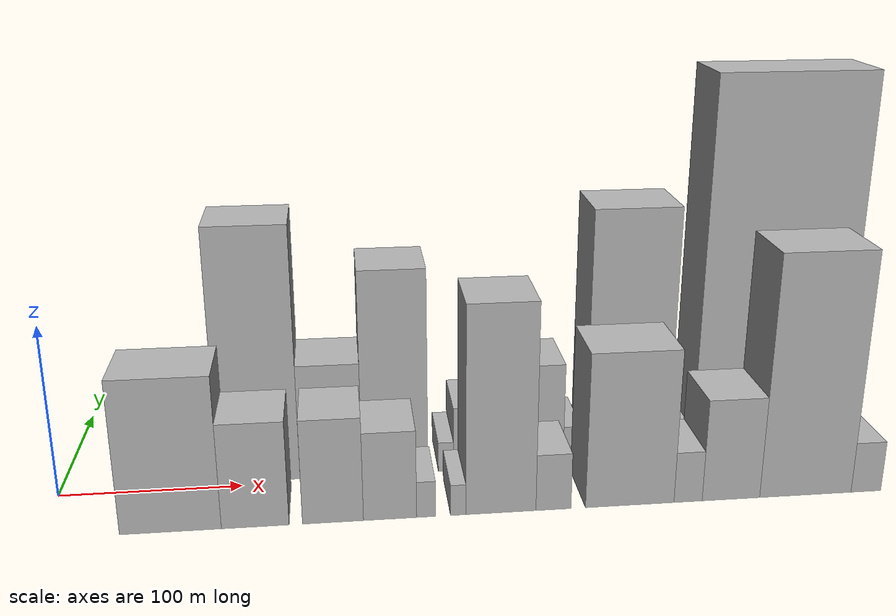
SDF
<sdf version="1.6">
 <world name="default">
  <scene>
   <sky><clouds><speed>12</speed></clouds></sky>
   <ambient>0.4 0.4 0.4 1</ambient>
   <background>0.7 0.7 0.7 1</background>
   <shadows>1</shadows>
  </scene>
  <gravity>0 0 -9.8066</gravity>
  <magnetic_field>6e-06 2.3e-05 -4.2e-05</magnetic_field>
  <physics default="0" name="default_physics" type="ode">
   <ode>
    <solver>
     <type>quick</type>
     <iters>10</iters>
     <sor>1.0</sor>
     <use_dynamic_moi_rescaling>0</use_dynamic_moi_rescaling>
    </solver>
    <constraints>
     <cfm>0</cfm>
     <erp>0.2</erp>
     <contact_max_correcting_vel>100</contact_max_correcting_vel>
     <contact_surface_layer>0.001</contact_surface_layer>
    </constraints>
   </ode>
   <max_step_size>0.004</max_step_size>
   <real_time_factor>1</real_time_factor>
   <real_time_update_rate>250</real_time_update_rate>
  </physics>
  <light name="sun" type="directional">
   <pose>0 0 10 0 0 0</pose>
   <diffuse>0.8 0.8 0.8 1</diffuse>
   <specular>0.2 0.2 0.2 1</specular>
   <attenuation>
    <range>1000</range>
    <constant>0.9</constant>
    <linear>0.01</linear>
    <quadratic>0.001</quadratic>
   </attenuation>
   <direction>-0.5 0.1 -0.9</direction>
  </light>
  <model name="building_1">
   <static>1</static>
   <pose>59.7228 24.5000 0 0.000000 0.000000 1.570796</pose>
   <link name="link">
    <pose>0 0 33.00 0 0 0</pose>
    <collision name="collision"><geometry><box><size>40.0000 39.4455 66.0000</size></box></geometry></collision>
    <visual name="visual">
     <cast_shadows>0</cast_shadows>
     <geometry><box><size>40.0000 39.4455 66.0000</size></box></geometry>
     <material>
      <script>
       <uri>model://HANNAS_wall/materials/scripts</uri>
       <uri>model://HANNAS_wall/materials/textures</uri>
       <name>vrc/HANNAS_wall</name>
      </script>
     </material>
    </visual>
   </link>
  </model>
  <model name="building_2">
   <static>1</static>
   <pose>109.1394 24.5000 0 0.000000 0.000000 1.570796</pose>
   <link name="link">
    <pose>0 0 75.00 0 0 0</pose>
    <collision name="collision"><geometry><box><size>40.0000 45.3878 150.0000</size></box></geometry></collision>
    <visual name="visual">
     <cast_shadows>0</cast_shadows>
     <geometry><box><size>40.0000 45.3878 150.0000</size></box></geometry>
     <material>
      <script>
       <uri>model://HANNAS_wall/materials/scripts</uri>
       <uri>model://HANNAS_wall/materials/textures</uri>
       <name>vrc/HANNAS_wall</name>
      </script>
     </material>
    </visual>
   </link>
  </model>
  <model name="building_3">
   <static>1</static>
   <pose>149.4172 24.5000 0 0.000000 0.000000 1.570796</pose>
   <link name="link">
    <pose>0 0 34.50 0 0 0</pose>
    <collision name="collision"><geometry><box><size>40.0000 35.1679 69.0000</size></box></geometry></collision>
    <visual name="visual">
     <cast_shadows>0</cast_shadows>
     <geometry><box><size>40.0000 35.1679 69.0000</size></box></geometry>
     <material>
      <script>
       <uri>model://HANNAS_wall/materials/scripts</uri>
       <uri>model://HANNAS_wall/materials/textures</uri>
       <name>vrc/HANNAS_wall</name>
      </script>
     </material>
    </visual>
   </link>
  </model>
  <model name="building_4">
   <static>1</static>
   <pose>185.8327 24.5000 0 0.000000 0.000000 1.570796</pose>
   <link name="link">
    <pose>0 0 61.50 0 0 0</pose>
    <collision name="collision"><geometry><box><size>40.0000 37.6631 123.0000</size></box></geometry></collision>
    <visual name="visual">
     <cast_shadows>0</cast_shadows>
     <geometry><box><size>40.0000 37.6631 123.0000</size></box></geometry>
     <material>
      <script>
       <uri>model://HANNAS_wall/materials/scripts</uri>
       <uri>model://HANNAS_wall/materials/textures</uri>
       <name>vrc/HANNAS_wall</name>
      </script>
     </material>
    </visual>
   </link>
  </model>
  <model name="building_5">
   <static>1</static>
   <pose>215.0154 24.5000 0 0.000000 0.000000 1.570796</pose>
   <link name="link">
    <pose>0 0 9.00 0 0 0</pose>
    <collision name="collision"><geometry><box><size>40.0000 8.7023 18.0000</size></box></geometry></collision>
    <visual name="visual">
     <cast_shadows>0</cast_shadows>
     <geometry><box><size>40.0000 8.7023 18.0000</size></box></geometry>
     <material>
      <script>
       <uri>model://HANNAS_wall/materials/scripts</uri>
       <uri>model://HANNAS_wall/materials/textures</uri>
       <name>vrc/HANNAS_wall</name>
      </script>
     </material>
    </visual>
   </link>
  </model>
  <model name="building_6">
   <static>1</static>
   <pose>230.9989 24.5000 0 0.000000 0.000000 1.570796</pose>
   <link name="link">
    <pose>0 0 19.50 0 0 0</pose>
    <collision name="collision"><geometry><box><size>40.0000 23.2647 39.0000</size></box></geometry></collision>
    <visual name="visual">
     <cast_shadows>0</cast_shadows>
     <geometry><box><size>40.0000 23.2647 39.0000</size></box></geometry>
     <material>
      <script>
       <uri>model://HANNAS_wall/materials/scripts</uri>
       <uri>model://HANNAS_wall/materials/textures</uri>
       <name>vrc/HANNAS_wall</name>
      </script>
     </material>
    </visual>
   </link>
  </model>
  <model name="building_7">
   <static>1</static>
   <pose>267.4815 24.5000 0 0.000000 0.000000 1.570796</pose>
   <link name="link">
    <pose>0 0 31.50 0 0 0</pose>
    <collision name="collision"><geometry><box><size>40.0000 31.7007 63.0000</size></box></geometry></collision>
    <visual name="visual">
     <cast_shadows>0</cast_shadows>
     <geometry><box><size>40.0000 31.7007 63.0000</size></box></geometry>
     <material>
      <script>
       <uri>model://HANNAS_wall/materials/scripts</uri>
       <uri>model://HANNAS_wall/materials/textures</uri>
       <name>vrc/HANNAS_wall</name>
      </script>
     </material>
    </visual>
   </link>
  </model>
  <model name="building_8">
   <static>1</static>
   <pose>288.3766 24.5000 0 0.000000 0.000000 1.570796</pose>
   <link name="link">
    <pose>0 0 12.00 0 0 0</pose>
    <collision name="collision"><geometry><box><size>40.0000 10.0895 24.0000</size></box></geometry></collision>
    <visual name="visual">
     <cast_shadows>0</cast_shadows>
     <geometry><box><size>40.0000 10.0895 24.0000</size></box></geometry>
     <material>
      <script>
       <uri>model://HANNAS_wall/materials/scripts</uri>
       <uri>model://HANNAS_wall/materials/textures</uri>
       <name>vrc/HANNAS_wall</name>
      </script>
     </material>
    </visual>
   </link>
  </model>
  <model name="building_9">
   <static>1</static>
   <pose>320.9958 24.5000 0 0.000000 0.000000 1.570796</pose>
   <link name="link">
    <pose>0 0 76.50 0 0 0</pose>
    <collision name="collision"><geometry><box><size>40.0000 49.1489 153.0000</size></box></geometry></collision>
    <visual name="visual">
     <cast_shadows>0</cast_shadows>
     <geometry><box><size>40.0000 49.1489 153.0000</size></box></geometry>
     <material>
      <script>
       <uri>model://HANNAS_wall/materials/scripts</uri>
       <uri>model://HANNAS_wall/materials/textures</uri>
       <name>vrc/HANNAS_wall</name>
      </script>
     </material>
    </visual>
   </link>
  </model>
  <model name="building_10">
   <static>1</static>
   <pose>356.3122 24.5000 0 0.000000 0.000000 1.570796</pose>
   <link name="link">
    <pose>0 0 9.00 0 0 0</pose>
    <collision name="collision"><geometry><box><size>40.0000 7.4839 18.0000</size></box></geometry></collision>
    <visual name="visual">
     <cast_shadows>0</cast_shadows>
     <geometry><box><size>40.0000 7.4839 18.0000</size></box></geometry>
     <material>
      <script>
       <uri>model://HANNAS_wall/materials/scripts</uri>
       <uri>model://HANNAS_wall/materials/textures</uri>
       <name>vrc/HANNAS_wall</name>
      </script>
     </material>
    </visual>
   </link>
  </model>
  <model name="building_11">
   <static>1</static>
   <pose>404.8409 24.5000 0 0.000000 0.000000 1.570796</pose>
   <link name="link">
    <pose>0 0 112.50 0 0 0</pose>
    <collision name="collision"><geometry><box><size>40.0000 89.5735 225.0000</size></box></geometry></collision>
    <visual name="visual">
     <cast_shadows>0</cast_shadows>
     <geometry><box><size>40.0000 89.5735 225.0000</size></box></geometry>
     <material>
      <script>
       <uri>model://HANNAS_wall/materials/scripts</uri>
       <uri>model://HANNAS_wall/materials/textures</uri>
       <name>vrc/HANNAS_wall</name>
      </script>
     </material>
    </visual>
   </link>
  </model>
  <model name="building_12">
   <static>1</static>
   <pose>66.0364 -24.5000 0 0.000000 0.000000 1.570796</pose>
   <link name="link">
    <pose>0 0 43.50 0 0 0</pose>
    <collision name="collision"><geometry><box><size>40.0000 52.0728 87.0000</size></box></geometry></collision>
    <visual name="visual">
     <cast_shadows>0</cast_shadows>
     <geometry><box><size>40.0000 52.0728 87.0000</size></box></geometry>
     <material>
      <script>
       <uri>model://HANNAS_wall/materials/scripts</uri>
       <uri>model://HANNAS_wall/materials/textures</uri>
       <name>vrc/HANNAS_wall</name>
      </script>
     </material>
    </visual>
   </link>
  </model>
  <model name="building_13">
   <static>1</static>
   <pose>109.6175 -24.5000 0 0.000000 0.000000 1.570796</pose>
   <link name="link">
    <pose>0 0 30.00 0 0 0</pose>
    <collision name="collision"><geometry><box><size>40.0000 35.0894 60.0000</size></box></geometry></collision>
    <visual name="visual">
     <cast_shadows>0</cast_shadows>
     <geometry><box><size>40.0000 35.0894 60.0000</size></box></geometry>
     <material>
      <script>
       <uri>model://HANNAS_wall/materials/scripts</uri>
       <uri>model://HANNAS_wall/materials/textures</uri>
       <name>vrc/HANNAS_wall</name>
      </script>
     </material>
    </visual>
   </link>
  </model>
  <model name="building_14">
   <static>1</static>
   <pose>150.1940 -24.5000 0 0.000000 0.000000 1.570796</pose>
   <link name="link">
    <pose>0 0 30.00 0 0 0</pose>
    <collision name="collision"><geometry><box><size>40.0000 32.0635 60.0000</size></box></geometry></collision>
    <visual name="visual">
     <cast_shadows>0</cast_shadows>
     <geometry><box><size>40.0000 32.0635 60.0000</size></box></geometry>
     <material>
      <script>
       <uri>model://HANNAS_wall/materials/scripts</uri>
       <uri>model://HANNAS_wall/materials/textures</uri>
       <name>vrc/HANNAS_wall</name>
      </script>
     </material>
    </visual>
   </link>
  </model>
  <model name="building_15">
   <static>1</static>
   <pose>180.3611 -24.5000 0 0.000000 0.000000 1.570796</pose>
   <link name="link">
    <pose>0 0 25.50 0 0 0</pose>
    <collision name="collision"><geometry><box><size>40.0000 28.2707 51.0000</size></box></geometry></collision>
    <visual name="visual">
     <cast_shadows>0</cast_shadows>
     <geometry><box><size>40.0000 28.2707 51.0000</size></box></geometry>
     <material>
      <script>
       <uri>model://HANNAS_wall/materials/scripts</uri>
       <uri>model://HANNAS_wall/materials/textures</uri>
       <name>vrc/HANNAS_wall</name>
      </script>
     </material>
    </visual>
   </link>
  </model>
  <model name="building_16">
   <static>1</static>
   <pose>199.5665 -24.5000 0 0.000000 0.000000 1.570796</pose>
   <link name="link">
    <pose>0 0 10.50 0 0 0</pose>
    <collision name="collision"><geometry><box><size>40.0000 10.1402 21.0000</size></box></geometry></collision>
    <visual name="visual">
     <cast_shadows>0</cast_shadows>
     <geometry><box><size>40.0000 10.1402 21.0000</size></box></geometry>
     <material>
      <script>
       <uri>model://HANNAS_wall/materials/scripts</uri>
       <uri>model://HANNAS_wall/materials/textures</uri>
       <name>vrc/HANNAS_wall</name>
      </script>
     </material>
    </visual>
   </link>
  </model>
  <model name="building_17">
   <static>1</static>
   <pose>216.7567 -24.5000 0 0.000000 0.000000 1.570796</pose>
   <link name="link">
    <pose>0 0 9.00 0 0 0</pose>
    <collision name="collision"><geometry><box><size>40.0000 8.2401 18.0000</size></box></geometry></collision>
    <visual name="visual">
     <cast_shadows>0</cast_shadows>
     <geometry><box><size>40.0000 8.2401 18.0000</size></box></geometry>
     <material>
      <script>
       <uri>model://HANNAS_wall/materials/scripts</uri>
       <uri>model://HANNAS_wall/materials/textures</uri>
       <name>vrc/HANNAS_wall</name>
      </script>
     </material>
    </visual>
   </link>
  </model>
  <model name="building_18">
   <static>1</static>
   <pose>239.8529 -24.5000 0 0.000000 0.000000 1.570796</pose>
   <link name="link">
    <pose>0 0 60.00 0 0 0</pose>
    <collision name="collision"><geometry><box><size>40.0000 37.9522 120.0000</size></box></geometry></collision>
    <visual name="visual">
     <cast_shadows>0</cast_shadows>
     <geometry><box><size>40.0000 37.9522 120.0000</size></box></geometry>
     <material>
      <script>
       <uri>model://HANNAS_wall/materials/scripts</uri>
       <uri>model://HANNAS_wall/materials/textures</uri>
       <name>vrc/HANNAS_wall</name>
      </script>
     </material>
    </visual>
   </link>
  </model>
  <model name="building_19">
   <static>1</static>
   <pose>268.4132 -24.5000 0 0.000000 0.000000 1.570796</pose>
   <link name="link">
    <pose>0 0 16.50 0 0 0</pose>
    <collision name="collision"><geometry><box><size>40.0000 19.1684 33.0000</size></box></geometry></collision>
    <visual name="visual">
     <cast_shadows>0</cast_shadows>
     <geometry><box><size>40.0000 19.1684 33.0000</size></box></geometry>
     <material>
      <script>
       <uri>model://HANNAS_wall/materials/scripts</uri>
       <uri>model://HANNAS_wall/materials/textures</uri>
       <name>vrc/HANNAS_wall</name>
      </script>
     </material>
    </visual>
   </link>
  </model>
  <model name="building_20">
   <static>1</static>
   <pose>310.5565 -24.5000 0 0.000000 0.000000 1.570796</pose>
   <link name="link">
    <pose>0 0 45.00 0 0 0</pose>
    <collision name="collision"><geometry><box><size>40.0000 49.1183 90.0000</size></box></geometry></collision>
    <visual name="visual">
     <cast_shadows>0</cast_shadows>
     <geometry><box><size>40.0000 49.1183 90.0000</size></box></geometry>
     <material>
      <script>
       <uri>model://HANNAS_wall/materials/scripts</uri>
       <uri>model://HANNAS_wall/materials/textures</uri>
       <name>vrc/HANNAS_wall</name>
      </script>
     </material>
    </visual>
   </link>
  </model>
  <model name="building_21">
   <static>1</static>
   <pose>343.0279 -24.5000 0 0.000000 0.000000 1.570796</pose>
   <link name="link">
    <pose>0 0 15.00 0 0 0</pose>
    <collision name="collision"><geometry><box><size>40.0000 15.8245 30.0000</size></box></geometry></collision>
    <visual name="visual">
     <cast_shadows>0</cast_shadows>
     <geometry><box><size>40.0000 15.8245 30.0000</size></box></geometry>
     <material>
      <script>
       <uri>model://HANNAS_wall/materials/scripts</uri>
       <uri>model://HANNAS_wall/materials/textures</uri>
       <name>vrc/HANNAS_wall</name>
      </script>
     </material>
    </visual>
   </link>
  </model>
  <model name="building_22">
   <static>1</static>
   <pose>367.2179 -24.5000 0 0.000000 0.000000 1.570796</pose>
   <link name="link">
    <pose>0 0 30.00 0 0 0</pose>
    <collision name="collision"><geometry><box><size>40.0000 32.5555 60.0000</size></box></geometry></collision>
    <visual name="visual">
     <cast_shadows>0</cast_shadows>
     <geometry><box><size>40.0000 32.5555 60.0000</size></box></geometry>
     <material>
      <script>
       <uri>model://HANNAS_wall/materials/scripts</uri>
       <uri>model://HANNAS_wall/materials/textures</uri>
       <name>vrc/HANNAS_wall</name>
      </script>
     </material>
    </visual>
   </link>
  </model>
  <model name="building_23">
   <static>1</static>
   <pose>409.7172 -24.5000 0 0.000000 0.000000 1.570796</pose>
   <link name="link">
    <pose>0 0 70.50 0 0 0</pose>
    <collision name="collision"><geometry><box><size>40.0000 52.4429 141.0000</size></box></geometry></collision>
    <visual name="visual">
     <cast_shadows>0</cast_shadows>
     <geometry><box><size>40.0000 52.4429 141.0000</size></box></geometry>
     <material>
      <script>
       <uri>model://HANNAS_wall/materials/scripts</uri>
       <uri>model://HANNAS_wall/materials/textures</uri>
       <name>vrc/HANNAS_wall</name>
      </script>
     </material>
    </visual>
   </link>
  </model>
  <model name="building_24">
   <static>1</static>
   <pose>444.5615 -24.5000 0 0.000000 0.000000 1.570796</pose>
   <link name="link">
    <pose>0 0 15.00 0 0 0</pose>
    <collision name="collision"><geometry><box><size>40.0000 17.2458 30.0000</size></box></geometry></collision>
    <visual name="visual">
     <cast_shadows>0</cast_shadows>
     <geometry><box><size>40.0000 17.2458 30.0000</size></box></geometry>
     <material>
      <script>
       <uri>model://HANNAS_wall/materials/scripts</uri>
       <uri>model://HANNAS_wall/materials/textures</uri>
       <name>vrc/HANNAS_wall</name>
      </script>
     </material>
    </visual>
   </link>
  </model>
 </world>
</sdf>
